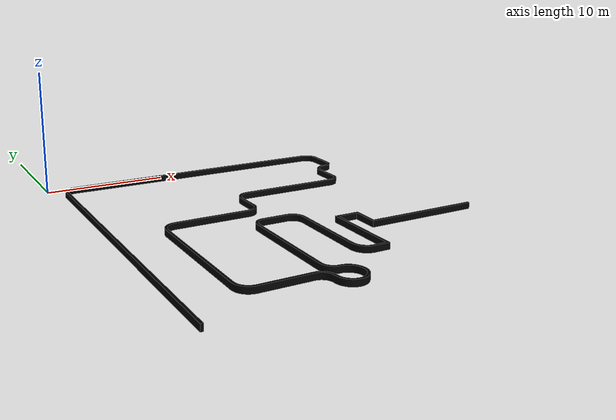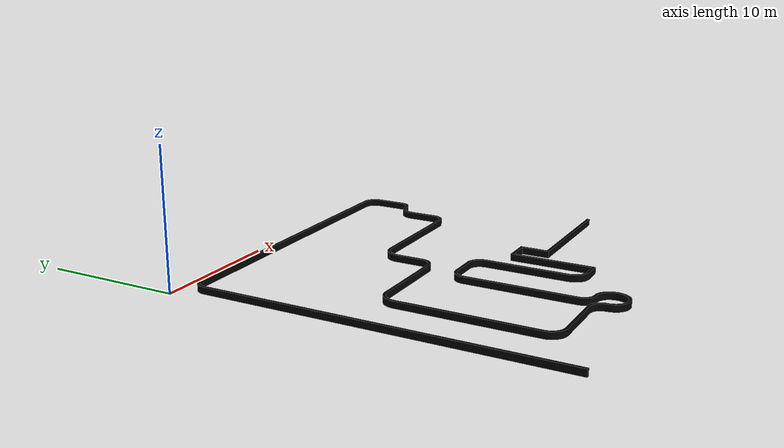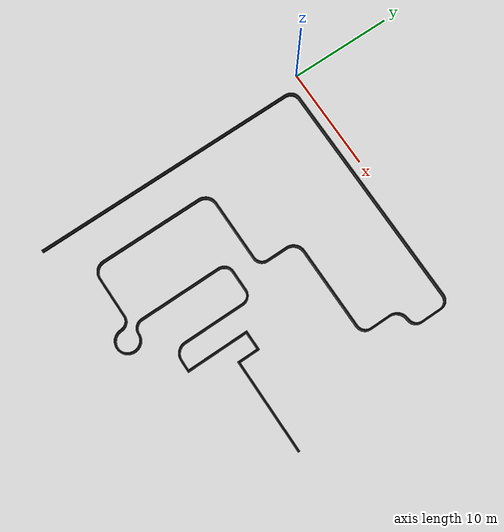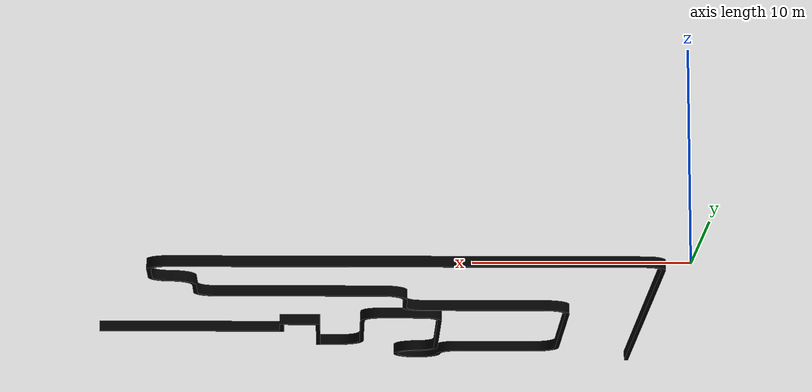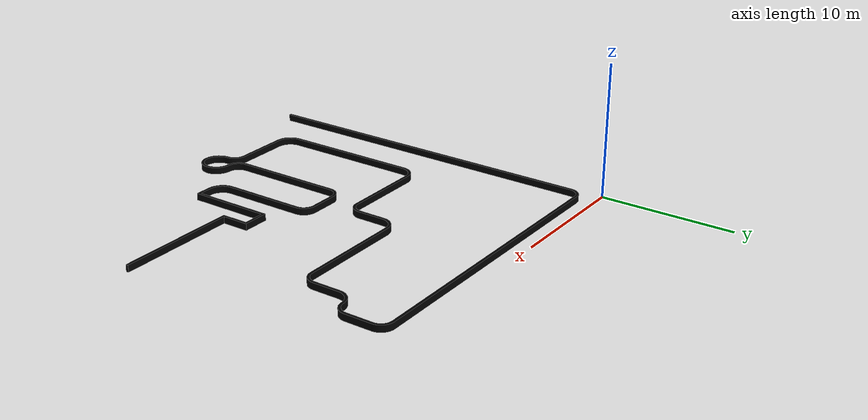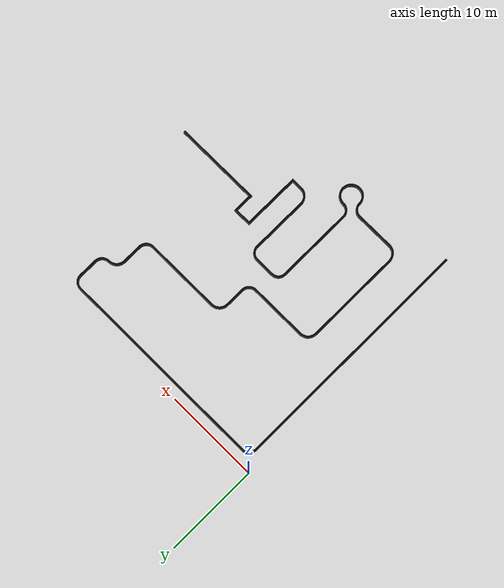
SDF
<?xml version="1.0" ?>
<sdf version="1.5">
  <model name="c-track">
    <static>true</static>
    <link name="c-track">
      <visual name="visual">
        <cast_shadows>false</cast_shadows>
        <pose>0 0 0 0 0 0</pose>
        <geometry>
          <mesh>
            <uri>model://track/meshes/track.stl </uri>
            <scale>0.01 0.01 0.01</scale>
          </mesh>
        </geometry>
        <material>
          <ambient>0 0 0 1</ambient>
          <diffuse>0 0 0 1</diffuse>
          <specular>0.1 0.1 0.1 1</specular>
          <emissive>0 0 0 0</emissive>
        </material>
      </visual>
    </link>
  </model>
</sdf>
